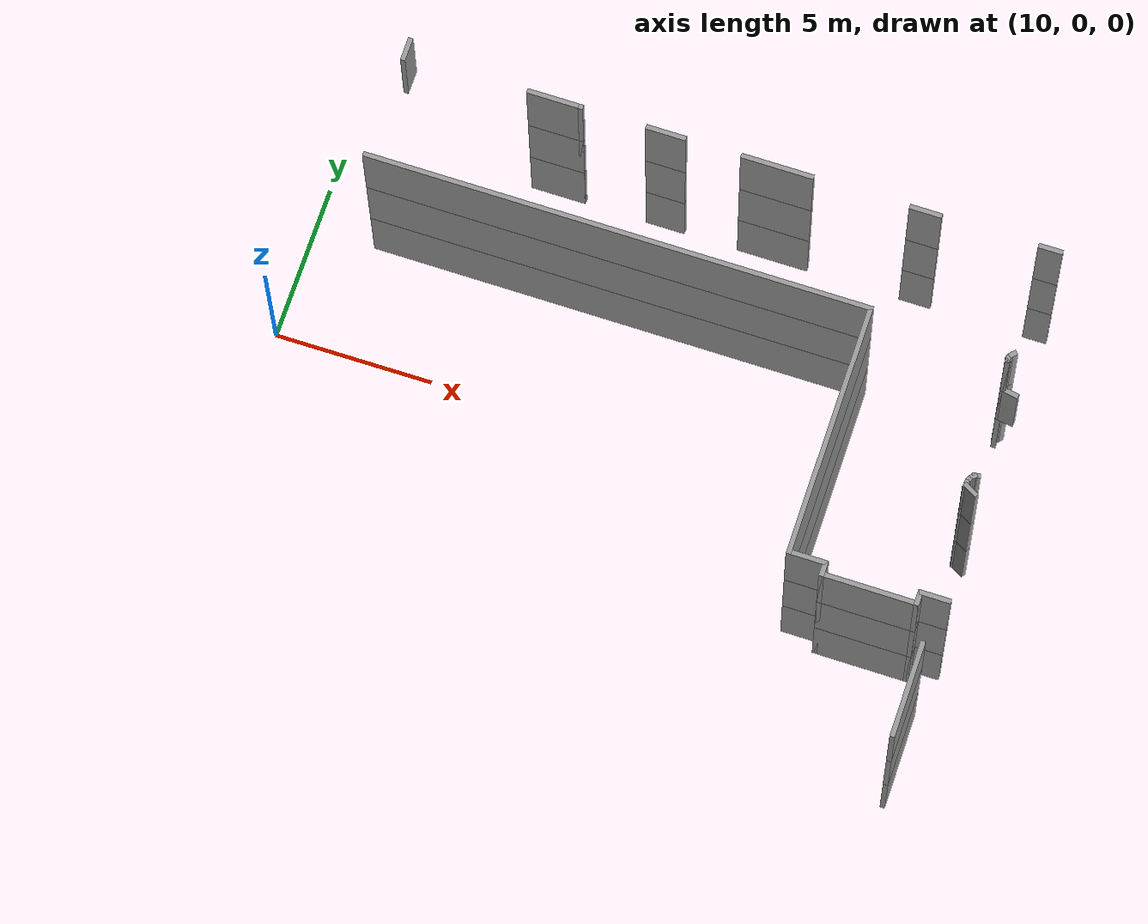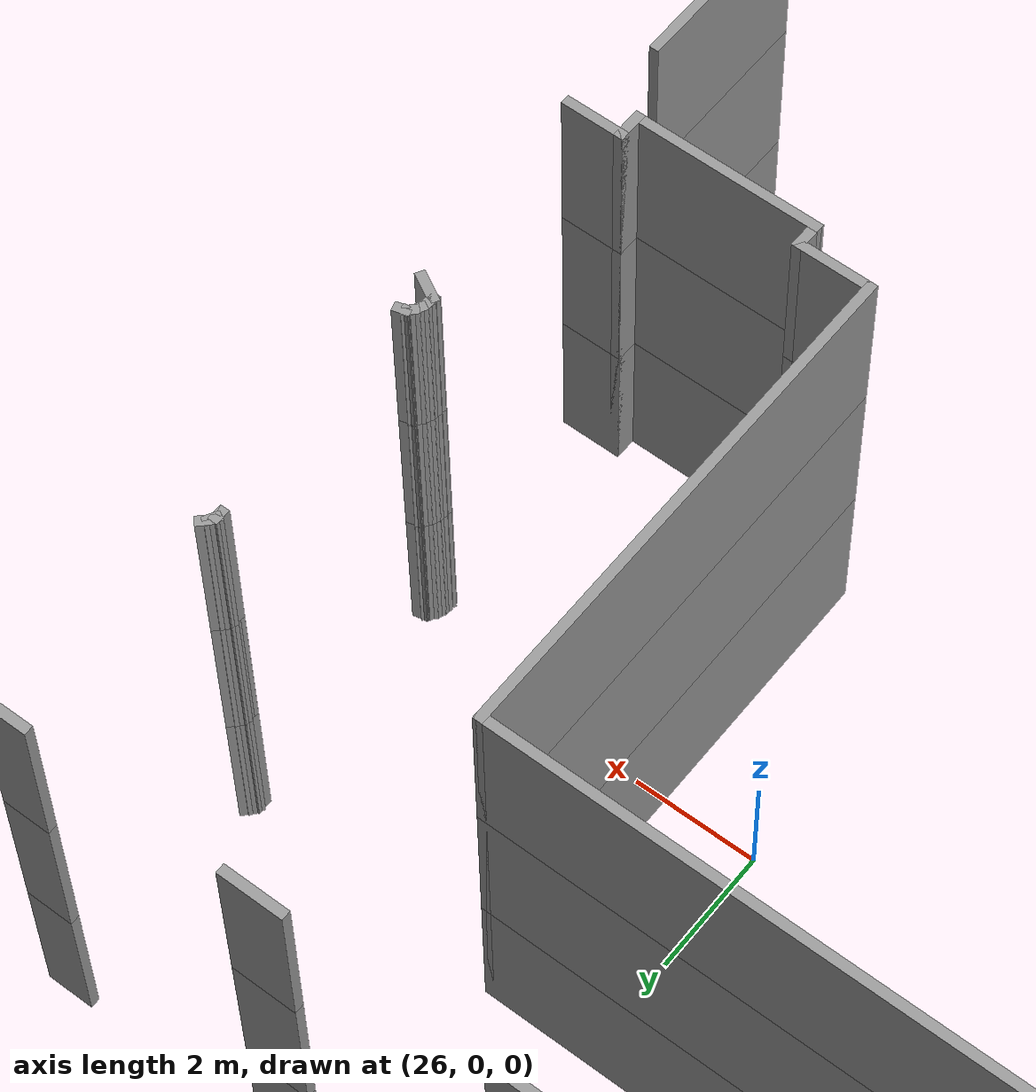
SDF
<sdf version="1.7">
 <model name="mapagazebo">
  <pose>-4.67869 9.01252 0 0 -0 0</pose>
  <link name="Wall_1156">
   <collision name="Wall_1156_Collision">
    <geometry><box><size>15.75 0.15 2.5</size></box></geometry>
    <pose>0 0 1.25 0 -0 0</pose>
   </collision>
   <visual name="Wall_1156_Visual">
    <pose>0 0 1.25 0 -0 0</pose>
    <geometry><box><size>15.75 0.15 2.5</size></box></geometry>
    <material>
     <script><uri>file://media/materials/scripts/gazebo.material</uri><name>Gazebo/Grey</name></script>
     <ambient>1 1 1 1</ambient>
    </material>
    <meta><layer>1</layer></meta>
   </visual>
   <pose>24.4654 -5.30647 2.5 0 -0 0</pose>
  </link>
  <link name="Wall_1158">
   <collision name="Wall_1158_Collision">
    <geometry><box><size>1.75 0.15 2.5</size></box></geometry>
    <pose>0 0 1.25 0 -0 0</pose>
   </collision>
   <visual name="Wall_1158_Visual">
    <pose>0 0 1.25 0 -0 0</pose>
    <geometry><box><size>1.75 0.15 2.5</size></box></geometry>
    <material>
     <script><uri>file://media/materials/scripts/gazebo.material</uri><name>Gazebo/Grey</name></script>
     <ambient>1 1 1 1</ambient>
    </material>
    <meta><layer>1</layer></meta>
   </visual>
   <pose>21.4212 -1.8985 2.5 0 -0 0</pose>
  </link>
  <link name="Wall_1159">
   <collision name="Wall_1159_Collision">
    <geometry><box><size>0.15 0.15 2.5</size></box></geometry>
    <pose>0 0 1.25 0 -0 0</pose>
   </collision>
   <visual name="Wall_1159_Visual">
    <pose>0 0 1.25 0 -0 0</pose>
    <geometry><box><size>0.15 0.15 2.5</size></box></geometry>
    <material>
     <script><uri>file://media/materials/scripts/gazebo.material</uri><name>Gazebo/Grey</name></script>
     <ambient>1 1 1 1</ambient>
    </material>
    <meta><layer>1</layer></meta>
   </visual>
   <pose>22.2212 -1.8985 2.5 0 -0 0</pose>
  </link>
  <link name="Wall_1163">
   <collision name="Wall_1163_Collision">
    <geometry><box><size>1.25 0.15 2.5</size></box></geometry>
    <pose>0 0 1.25 0 -0 0</pose>
   </collision>
   <visual name="Wall_1163_Visual">
    <pose>0 0 1.25 0 -0 0</pose>
    <geometry><box><size>1.25 0.15 2.5</size></box></geometry>
    <material>
     <script><uri>file://media/materials/scripts/gazebo.material</uri><name>Gazebo/Grey</name></script>
     <ambient>1 1 1 1</ambient>
    </material>
    <meta><layer>1</layer></meta>
   </visual>
   <pose>24.8712 -1.8985 2.5 0 -0 0</pose>
  </link>
  <link name="Wall_1167">
   <collision name="Wall_1167_Collision">
    <geometry><box><size>2.25 0.15 2.5</size></box></geometry>
    <pose>0 0 1.25 0 -0 0</pose>
   </collision>
   <visual name="Wall_1167_Visual">
    <pose>0 0 1.25 0 -0 0</pose>
    <geometry><box><size>2.25 0.15 2.5</size></box></geometry>
    <material>
     <script><uri>file://media/materials/scripts/gazebo.material</uri><name>Gazebo/Grey</name></script>
     <ambient>1 1 1 1</ambient>
    </material>
    <meta><layer>1</layer></meta>
   </visual>
   <pose>28.3212 -1.8985 2.5 0 -0 0</pose>
  </link>
  <link name="Wall_1171">
   <collision name="Wall_1171_Collision">
    <geometry><box><size>1 0.15 2.5</size></box></geometry>
    <pose>0 0 1.25 0 -0 0</pose>
   </collision>
   <visual name="Wall_1171_Visual">
    <pose>0 0 1.25 0 -0 0</pose>
    <geometry><box><size>1 0.15 2.5</size></box></geometry>
    <material>
     <script><uri>file://media/materials/scripts/gazebo.material</uri><name>Gazebo/Grey</name></script>
     <ambient>1 1 1 1</ambient>
    </material>
    <meta><layer>1</layer></meta>
   </visual>
   <pose>32.8962 -1.8985 2.5 0 -0 0</pose>
  </link>
  <link name="Wall_1175">
   <collision name="Wall_1175_Collision">
    <geometry><box><size>0.75 0.15 2.5</size></box></geometry>
    <pose>0 0 1.25 0 -0 0</pose>
   </collision>
   <visual name="Wall_1175_Visual">
    <pose>0 0 1.25 0 -0 0</pose>
    <geometry><box><size>0.75 0.15 2.5</size></box></geometry>
    <material>
     <script><uri>file://media/materials/scripts/gazebo.material</uri><name>Gazebo/Grey</name></script>
     <ambient>1 1 1 1</ambient>
    </material>
    <meta><layer>1</layer></meta>
   </visual>
   <pose>36.7212 -1.8985 2.5 0 -0 0</pose>
  </link>
  <link name="Wall_1209">
   <collision name="Wall_1209_Collision">
    <geometry><box><size>8 0.15 2.5</size></box></geometry>
    <pose>0 0 1.25 0 -0 0</pose>
   </collision>
   <visual name="Wall_1209_Visual">
    <pose>0 0 1.25 0 -0 0</pose>
    <geometry><box><size>8 0.15 2.5</size></box></geometry>
    <material>
     <script><uri>file://media/materials/scripts/gazebo.material</uri><name>Gazebo/Grey</name></script>
     <ambient>1 1 1 1</ambient>
    </material>
    <meta><layer>1</layer></meta>
   </visual>
   <pose>32.2654 -9.23147 2.5 0 -0 -1.5708</pose>
  </link>
  <link name="Wall_1210">
   <collision name="Wall_1210_Collision">
    <geometry><box><size>1.25 0.15 2.5</size></box></geometry>
    <pose>0 0 1.25 0 -0 0</pose>
   </collision>
   <visual name="Wall_1210_Visual">
    <pose>0 0 1.25 0 -0 0</pose>
    <geometry><box><size>1.25 0.15 2.5</size></box></geometry>
    <material>
     <script><uri>file://media/materials/scripts/gazebo.material</uri><name>Gazebo/Grey</name></script>
     <ambient>1 1 1 1</ambient>
    </material>
    <meta><layer>1</layer></meta>
   </visual>
   <pose>32.8154 -13.1565 2.5 0 -0 0</pose>
  </link>
  <link name="Wall_1211">
   <collision name="Wall_1211_Collision">
    <geometry><box><size>0.5 0.15 2.5</size></box></geometry>
    <pose>0 0 1.25 0 -0 0</pose>
   </collision>
   <visual name="Wall_1211_Visual">
    <pose>0 0 1.25 0 -0 0</pose>
    <geometry><box><size>0.5 0.15 2.5</size></box></geometry>
    <material>
     <script><uri>file://media/materials/scripts/gazebo.material</uri><name>Gazebo/Grey</name></script>
     <ambient>1 1 1 1</ambient>
    </material>
    <meta><layer>1</layer></meta>
   </visual>
   <pose>33.3654 -13.3315 2.5 0 -0 -1.5708</pose>
  </link>
  <link name="Wall_1212">
   <collision name="Wall_1212_Collision">
    <geometry><box><size>3 0.15 2.5</size></box></geometry>
    <pose>0 0 1.25 0 -0 0</pose>
   </collision>
   <visual name="Wall_1212_Visual">
    <pose>0 0 1.25 0 -0 0</pose>
    <geometry><box><size>3 0.15 2.5</size></box></geometry>
    <material>
     <script><uri>file://media/materials/scripts/gazebo.material</uri><name>Gazebo/Grey</name></script>
     <ambient>1 1 1 1</ambient>
    </material>
    <meta><layer>1</layer></meta>
   </visual>
   <pose>34.7904 -13.5065 2.5 0 -0 0</pose>
  </link>
  <link name="Wall_1213">
   <collision name="Wall_1213_Collision">
    <geometry><box><size>0.5 0.15 2.5</size></box></geometry>
    <pose>0 0 1.25 0 -0 0</pose>
   </collision>
   <visual name="Wall_1213_Visual">
    <pose>0 0 1.25 0 -0 0</pose>
    <geometry><box><size>0.5 0.15 2.5</size></box></geometry>
    <material>
     <script><uri>file://media/materials/scripts/gazebo.material</uri><name>Gazebo/Grey</name></script>
     <ambient>1 1 1 1</ambient>
    </material>
    <meta><layer>1</layer></meta>
   </visual>
   <pose>36.2154 -13.3315 2.5 0 -0 1.5708</pose>
  </link>
  <link name="Wall_1214">
   <collision name="Wall_1214_Collision">
    <geometry><box><size>1 0.15 2.5</size></box></geometry>
    <pose>0 0 1.25 0 -0 0</pose>
   </collision>
   <visual name="Wall_1214_Visual">
    <pose>0 0 1.25 0 -0 0</pose>
    <geometry><box><size>1 0.15 2.5</size></box></geometry>
    <material>
     <script><uri>file://media/materials/scripts/gazebo.material</uri><name>Gazebo/Grey</name></script>
     <ambient>1 1 1 1</ambient>
    </material>
    <meta><layer>1</layer></meta>
   </visual>
   <pose>36.6404 -13.1565 2.5 0 -0 0</pose>
  </link>
  <link name="Wall_1217">
   <collision name="Wall_1217_Collision">
    <geometry><box><size>3 0.15 2.5</size></box></geometry>
    <pose>0 0 1.25 0 -0 0</pose>
   </collision>
   <visual name="Wall_1217_Visual">
    <pose>0 0 1.25 0 -0 0</pose>
    <geometry><box><size>3 0.15 2.5</size></box></geometry>
    <material>
     <script><uri>file://media/materials/scripts/gazebo.material</uri><name>Gazebo/Grey</name></script>
     <ambient>1 1 1 1</ambient>
    </material>
    <meta><layer>1</layer></meta>
   </visual>
   <pose>36.7273 -16.0221 2.5 0 -0 -1.5708</pose>
  </link>
  <link name="Wall_1345">
   <collision name="Wall_1345_Collision">
    <geometry><box><size>0.25 0.15 2.5</size></box></geometry>
    <pose>0 0 1.25 0 -0 0</pose>
   </collision>
   <visual name="Wall_1345_Visual">
    <pose>0 0 1.25 0 -0 0</pose>
    <geometry><box><size>0.25 0.15 2.5</size></box></geometry>
    <material>
     <script><uri>file://media/materials/scripts/gazebo.material</uri><name>Gazebo/Grey</name></script>
     <ambient>1 1 1 1</ambient>
    </material>
    <meta><layer>1</layer></meta>
   </visual>
   <pose>36.5394 -5.55227 2.5 0 -0 1.5708</pose>
  </link>
  <link name="Wall_1346">
   <collision name="Wall_1346_Collision">
    <geometry><box><size>0.25 0.15 2.5</size></box></geometry>
    <pose>0 0 1.25 0 -0 0</pose>
   </collision>
   <visual name="Wall_1346_Visual">
    <pose>0 0 1.25 0 -0 0</pose>
    <geometry><box><size>0.25 0.15 2.5</size></box></geometry>
    <material>
     <script><uri>file://media/materials/scripts/gazebo.material</uri><name>Gazebo/Grey</name></script>
     <ambient>1 1 1 1</ambient>
    </material>
    <meta><layer>1</layer></meta>
   </visual>
   <pose>36.5644 -5.45897 2.5 0 -0 1.0472</pose>
  </link>
  <link name="Wall_1347">
   <collision name="Wall_1347_Collision">
    <geometry><box><size>0.25 0.15 2.5</size></box></geometry>
    <pose>0 0 1.25 0 -0 0</pose>
   </collision>
   <visual name="Wall_1347_Visual">
    <pose>0 0 1.25 0 -0 0</pose>
    <geometry><box><size>0.25 0.15 2.5</size></box></geometry>
    <material>
     <script><uri>file://media/materials/scripts/gazebo.material</uri><name>Gazebo/Grey</name></script>
     <ambient>1 1 1 1</ambient>
    </material>
    <meta><layer>1</layer></meta>
   </visual>
   <pose>36.6247 -5.38032 2.5 0 -0 0.785398</pose>
  </link>
  <link name="Wall_1357">
   <collision name="Wall_1357_Collision">
    <geometry><box><size>0.579191 0.15 2.5</size></box></geometry>
    <pose>0 0 1.25 0 -0 0</pose>
   </collision>
   <visual name="Wall_1357_Visual">
    <pose>0 0 1.25 0 -0 0</pose>
    <geometry><box><size>0.579191 0.15 2.5</size></box></geometry>
    <material>
     <script><uri>file://media/materials/scripts/gazebo.material</uri><name>Gazebo/Grey</name></script>
     <ambient>1 1 1 1</ambient>
    </material>
    <meta><layer>1</layer></meta>
   </visual>
   <pose>36.7513 -5.63612 2.5 0 -0 2.98322</pose>
  </link>
  <link name="Wall_1358">
   <collision name="Wall_1358_Collision">
    <geometry><box><size>0.15 0.15 2.5</size></box></geometry>
    <pose>0 0 1.25 0 -0 0</pose>
   </collision>
   <visual name="Wall_1358_Visual">
    <pose>0 0 1.25 0 -0 0</pose>
    <geometry><box><size>0.15 0.15 2.5</size></box></geometry>
    <material>
     <script><uri>file://media/materials/scripts/gazebo.material</uri><name>Gazebo/Grey</name></script>
     <ambient>1 1 1 1</ambient>
    </material>
    <meta><layer>1</layer></meta>
   </visual>
   <pose>36.5394 -5.60227 2.5 0 -0 0</pose>
  </link>
  <link name="Wall_1359">
   <collision name="Wall_1359_Collision">
    <geometry><box><size>0.25 0.15 2.5</size></box></geometry>
    <pose>0 0 1.25 0 -0 0</pose>
   </collision>
   <visual name="Wall_1359_Visual">
    <pose>0 0 1.25 0 -0 0</pose>
    <geometry><box><size>0.25 0.15 2.5</size></box></geometry>
    <material>
     <script><uri>file://media/materials/scripts/gazebo.material</uri><name>Gazebo/Grey</name></script>
     <ambient>1 1 1 1</ambient>
    </material>
    <meta><layer>1</layer></meta>
   </visual>
   <pose>36.5105 -9.60144 2.5 0 -0 1.5708</pose>
  </link>
  <link name="Wall_1360">
   <collision name="Wall_1360_Collision">
    <geometry><box><size>0.25 0.15 2.5</size></box></geometry>
    <pose>0 0 1.25 0 -0 0</pose>
   </collision>
   <visual name="Wall_1360_Visual">
    <pose>0 0 1.25 0 -0 0</pose>
    <geometry><box><size>0.25 0.15 2.5</size></box></geometry>
    <material>
     <script><uri>file://media/materials/scripts/gazebo.material</uri><name>Gazebo/Grey</name></script>
     <ambient>1 1 1 1</ambient>
    </material>
    <meta><layer>1</layer></meta>
   </visual>
   <pose>36.5235 -9.50314 2.5 0 -0 1.309</pose>
  </link>
  <link name="Wall_1361">
   <collision name="Wall_1361_Collision">
    <geometry><box><size>0.25 0.15 2.5</size></box></geometry>
    <pose>0 0 1.25 0 -0 0</pose>
   </collision>
   <visual name="Wall_1361_Visual">
    <pose>0 0 1.25 0 -0 0</pose>
    <geometry><box><size>0.25 0.15 2.5</size></box></geometry>
    <material>
     <script><uri>file://media/materials/scripts/gazebo.material</uri><name>Gazebo/Grey</name></script>
     <ambient>1 1 1 1</ambient>
    </material>
    <meta><layer>1</layer></meta>
   </visual>
   <pose>36.5614 -9.41155 2.5 0 -0 1.0472</pose>
  </link>
  <link name="Wall_1362">
   <collision name="Wall_1362_Collision">
    <geometry><box><size>0.25 0.15 2.5</size></box></geometry>
    <pose>0 0 1.25 0 -0 0</pose>
   </collision>
   <visual name="Wall_1362_Visual">
    <pose>0 0 1.25 0 -0 0</pose>
    <geometry><box><size>0.25 0.15 2.5</size></box></geometry>
    <material>
     <script><uri>file://media/materials/scripts/gazebo.material</uri><name>Gazebo/Grey</name></script>
     <ambient>1 1 1 1</ambient>
    </material>
    <meta><layer>1</layer></meta>
   </visual>
   <pose>36.6218 -9.33289 2.5 0 -0 0.785398</pose>
  </link>
  <link name="Wall_1363">
   <collision name="Wall_1363_Collision">
    <geometry><box><size>0.15 0.15 2.5</size></box></geometry>
    <pose>0 0 1.25 0 -0 0</pose>
   </collision>
   <visual name="Wall_1363_Visual">
    <pose>0 0 1.25 0 -0 0</pose>
    <geometry><box><size>0.15 0.15 2.5</size></box></geometry>
    <material>
     <script><uri>file://media/materials/scripts/gazebo.material</uri><name>Gazebo/Grey</name></script>
     <ambient>1 1 1 1</ambient>
    </material>
    <meta><layer>1</layer></meta>
   </visual>
   <pose>36.6571 -9.29753 2.5 0 -0 0</pose>
  </link>
  <link name="Wall_1364">
   <collision name="Wall_1364_Collision">
    <geometry><box><size>0.25 0.15 2.5</size></box></geometry>
    <pose>0 0 1.25 0 -0 0</pose>
   </collision>
   <visual name="Wall_1364_Visual">
    <pose>0 0 1.25 0 -0 0</pose>
    <geometry><box><size>0.25 0.15 2.5</size></box></geometry>
    <material>
     <script><uri>file://media/materials/scripts/gazebo.material</uri><name>Gazebo/Grey</name></script>
     <ambient>1 1 1 1</ambient>
    </material>
    <meta><layer>1</layer></meta>
   </visual>
   <pose>36.7054 -9.28459 2.5 0 -0 0.261799</pose>
  </link>
  <link name="Wall_1374">
   <collision name="Wall_1374_Collision">
    <geometry><box><size>0.514686 0.15 2.5</size></box></geometry>
    <pose>0 0 1.25 0 -0 0</pose>
   </collision>
   <visual name="Wall_1374_Visual">
    <pose>0 0 1.25 0 -0 0</pose>
    <geometry><box><size>0.514686 0.15 2.5</size></box></geometry>
    <material>
     <script><uri>file://media/materials/scripts/gazebo.material</uri><name>Gazebo/Grey</name></script>
     <ambient>1 1 1 1</ambient>
    </material>
    <meta><layer>1</layer></meta>
   </visual>
   <pose>36.6701 -9.73974 2.5 0 -0 2.63605</pose>
  </link>
  <link name="Wall_1375">
   <collision name="Wall_1375_Collision">
    <geometry><box><size>0.15 0.15 2.5</size></box></geometry>
    <pose>0 0 1.25 0 -0 0</pose>
   </collision>
   <visual name="Wall_1375_Visual">
    <pose>0 0 1.25 0 -0 0</pose>
    <geometry><box><size>0.15 0.15 2.5</size></box></geometry>
    <material>
     <script><uri>file://media/materials/scripts/gazebo.material</uri><name>Gazebo/Grey</name></script>
     <ambient>1 1 1 1</ambient>
    </material>
    <meta><layer>1</layer></meta>
   </visual>
   <pose>36.5105 -9.65144 2.5 0 -0 0</pose>
  </link>
  <link name="Wall_1376">
   <collision name="Wall_1376_Collision">
    <geometry><box><size>0.15 0.15 2.5</size></box></geometry>
    <pose>0 0 1.25 0 -0 0</pose>
   </collision>
   <visual name="Wall_1376_Visual">
    <pose>0 0 1.25 0 -0 0</pose>
    <geometry><box><size>0.15 0.15 2.5</size></box></geometry>
    <material>
     <script><uri>file://media/materials/scripts/gazebo.material</uri><name>Gazebo/Grey</name></script>
     <ambient>1 1 1 1</ambient>
    </material>
    <meta><layer>1</layer></meta>
   </visual>
   <pose>36.5105 -9.65144 2.5 0 -0 0</pose>
  </link>
  <link name="Wall_1761">
   <collision name="Wall_1761_Collision">
    <geometry><box><size>0.75 0.15 2.5</size></box></geometry>
    <pose>0 0 1.25 0 -0 0</pose>
   </collision>
   <visual name="Wall_1761_Visual">
    <pose>0 0 1.25 0 -0 0</pose>
    <geometry><box><size>0.75 0.15 2.5</size></box></geometry>
    <material>
     <script><uri>file://media/materials/scripts/gazebo.material</uri><name>Gazebo/Grey</name></script>
     <ambient>1 1 1 1</ambient>
    </material>
    <meta><layer>2</layer></meta>
   </visual>
   <pose>16.7273 -1.74706 5 0 -0 1.5708</pose>
  </link>
  <link name="Wall_1780">
   <collision name="Wall_1780_Collision">
    <geometry><box><size>15.75 0.15 2.5</size></box></geometry>
    <pose>0 0 1.25 0 -0 0</pose>
   </collision>
   <visual name="Wall_1780_Visual">
    <pose>0 0 1.25 0 -0 0</pose>
    <geometry><box><size>15.75 0.15 2.5</size></box></geometry>
    <material>
     <script><uri>file://media/materials/scripts/gazebo.material</uri><name>Gazebo/Grey</name></script>
     <ambient>1 1 1 1</ambient>
    </material>
    <meta><layer>2</layer></meta>
   </visual>
   <pose>24.4654 -5.30647 5 0 -0 0</pose>
  </link>
  <link name="Wall_1782">
   <collision name="Wall_1782_Collision">
    <geometry><box><size>1.75 0.15 2.5</size></box></geometry>
    <pose>0 0 1.25 0 -0 0</pose>
   </collision>
   <visual name="Wall_1782_Visual">
    <pose>0 0 1.25 0 -0 0</pose>
    <geometry><box><size>1.75 0.15 2.5</size></box></geometry>
    <material>
     <script><uri>file://media/materials/scripts/gazebo.material</uri><name>Gazebo/Grey</name></script>
     <ambient>1 1 1 1</ambient>
    </material>
    <meta><layer>2</layer></meta>
   </visual>
   <pose>21.4212 -1.8985 5 0 -0 0</pose>
  </link>
  <link name="Wall_1783">
   <collision name="Wall_1783_Collision">
    <geometry><box><size>0.15 0.15 2.5</size></box></geometry>
    <pose>0 0 1.25 0 -0 0</pose>
   </collision>
   <visual name="Wall_1783_Visual">
    <pose>0 0 1.25 0 -0 0</pose>
    <geometry><box><size>0.15 0.15 2.5</size></box></geometry>
    <material>
     <script><uri>file://media/materials/scripts/gazebo.material</uri><name>Gazebo/Grey</name></script>
     <ambient>1 1 1 1</ambient>
    </material>
    <meta><layer>2</layer></meta>
   </visual>
   <pose>22.2212 -1.8985 5 0 -0 0</pose>
  </link>
  <link name="Wall_1787">
   <collision name="Wall_1787_Collision">
    <geometry><box><size>1.25 0.15 2.5</size></box></geometry>
    <pose>0 0 1.25 0 -0 0</pose>
   </collision>
   <visual name="Wall_1787_Visual">
    <pose>0 0 1.25 0 -0 0</pose>
    <geometry><box><size>1.25 0.15 2.5</size></box></geometry>
    <material>
     <script><uri>file://media/materials/scripts/gazebo.material</uri><name>Gazebo/Grey</name></script>
     <ambient>1 1 1 1</ambient>
    </material>
    <meta><layer>2</layer></meta>
   </visual>
   <pose>24.8712 -1.8985 5 0 -0 0</pose>
  </link>
  <link name="Wall_1791">
   <collision name="Wall_1791_Collision">
    <geometry><box><size>2.25 0.15 2.5</size></box></geometry>
    <pose>0 0 1.25 0 -0 0</pose>
   </collision>
   <visual name="Wall_1791_Visual">
    <pose>0 0 1.25 0 -0 0</pose>
    <geometry><box><size>2.25 0.15 2.5</size></box></geometry>
    <material>
     <script><uri>file://media/materials/scripts/gazebo.material</uri><name>Gazebo/Grey</name></script>
     <ambient>1 1 1 1</ambient>
    </material>
    <meta><layer>2</layer></meta>
   </visual>
   <pose>28.3212 -1.8985 5 0 -0 0</pose>
  </link>
  <link name="Wall_1795">
   <collision name="Wall_1795_Collision">
    <geometry><box><size>1 0.15 2.5</size></box></geometry>
    <pose>0 0 1.25 0 -0 0</pose>
   </collision>
   <visual name="Wall_1795_Visual">
    <pose>0 0 1.25 0 -0 0</pose>
    <geometry><box><size>1 0.15 2.5</size></box></geometry>
    <material>
     <script><uri>file://media/materials/scripts/gazebo.material</uri><name>Gazebo/Grey</name></script>
     <ambient>1 1 1 1</ambient>
    </material>
    <meta><layer>2</layer></meta>
   </visual>
   <pose>32.8962 -1.8985 5 0 -0 0</pose>
  </link>
  <link name="Wall_1799">
   <collision name="Wall_1799_Collision">
    <geometry><box><size>0.75 0.15 2.5</size></box></geometry>
    <pose>0 0 1.25 0 -0 0</pose>
   </collision>
   <visual name="Wall_1799_Visual">
    <pose>0 0 1.25 0 -0 0</pose>
    <geometry><box><size>0.75 0.15 2.5</size></box></geometry>
    <material>
     <script><uri>file://media/materials/scripts/gazebo.material</uri><name>Gazebo/Grey</name></script>
     <ambient>1 1 1 1</ambient>
    </material>
    <meta><layer>2</layer></meta>
   </visual>
   <pose>36.7212 -1.8985 5 0 -0 0</pose>
  </link>
  <link name="Wall_1833">
   <collision name="Wall_1833_Collision">
    <geometry><box><size>8 0.15 2.5</size></box></geometry>
    <pose>0 0 1.25 0 -0 0</pose>
   </collision>
   <visual name="Wall_1833_Visual">
    <pose>0 0 1.25 0 -0 0</pose>
    <geometry><box><size>8 0.15 2.5</size></box></geometry>
    <material>
     <script><uri>file://media/materials/scripts/gazebo.material</uri><name>Gazebo/Grey</name></script>
     <ambient>1 1 1 1</ambient>
    </material>
    <meta><layer>2</layer></meta>
   </visual>
   <pose>32.2654 -9.23147 5 0 -0 -1.5708</pose>
  </link>
  <link name="Wall_1834">
   <collision name="Wall_1834_Collision">
    <geometry><box><size>1.25 0.15 2.5</size></box></geometry>
    <pose>0 0 1.25 0 -0 0</pose>
   </collision>
   <visual name="Wall_1834_Visual">
    <pose>0 0 1.25 0 -0 0</pose>
    <geometry><box><size>1.25 0.15 2.5</size></box></geometry>
    <material>
     <script><uri>file://media/materials/scripts/gazebo.material</uri><name>Gazebo/Grey</name></script>
     <ambient>1 1 1 1</ambient>
    </material>
    <meta><layer>2</layer></meta>
   </visual>
   <pose>32.8154 -13.1565 5 0 -0 0</pose>
  </link>
  <link name="Wall_1835">
   <collision name="Wall_1835_Collision">
    <geometry><box><size>0.5 0.15 2.5</size></box></geometry>
    <pose>0 0 1.25 0 -0 0</pose>
   </collision>
   <visual name="Wall_1835_Visual">
    <pose>0 0 1.25 0 -0 0</pose>
    <geometry><box><size>0.5 0.15 2.5</size></box></geometry>
    <material>
     <script><uri>file://media/materials/scripts/gazebo.material</uri><name>Gazebo/Grey</name></script>
     <ambient>1 1 1 1</ambient>
    </material>
    <meta><layer>2</layer></meta>
   </visual>
   <pose>33.3654 -13.3315 5 0 -0 -1.5708</pose>
  </link>
  <link name="Wall_1836">
   <collision name="Wall_1836_Collision">
    <geometry><box><size>3 0.15 2.5</size></box></geometry>
    <pose>0 0 1.25 0 -0 0</pose>
   </collision>
   <visual name="Wall_1836_Visual">
    <pose>0 0 1.25 0 -0 0</pose>
    <geometry><box><size>3 0.15 2.5</size></box></geometry>
    <material>
     <script><uri>file://media/materials/scripts/gazebo.material</uri><name>Gazebo/Grey</name></script>
     <ambient>1 1 1 1</ambient>
    </material>
    <meta><layer>2</layer></meta>
   </visual>
   <pose>34.7904 -13.5065 5 0 -0 0</pose>
  </link>
  <link name="Wall_1837">
   <collision name="Wall_1837_Collision">
    <geometry><box><size>0.5 0.15 2.5</size></box></geometry>
    <pose>0 0 1.25 0 -0 0</pose>
   </collision>
   <visual name="Wall_1837_Visual">
    <pose>0 0 1.25 0 -0 0</pose>
    <geometry><box><size>0.5 0.15 2.5</size></box></geometry>
    <material>
     <script><uri>file://media/materials/scripts/gazebo.material</uri><name>Gazebo/Grey</name></script>
     <ambient>1 1 1 1</ambient>
    </material>
    <meta><layer>2</layer></meta>
   </visual>
   <pose>36.2154 -13.3315 5 0 -0 1.5708</pose>
  </link>
  <link name="Wall_1838">
   <collision name="Wall_1838_Collision">
    <geometry><box><size>1 0.15 2.5</size></box></geometry>
    <pose>0 0 1.25 0 -0 0</pose>
   </collision>
   <visual name="Wall_1838_Visual">
    <pose>0 0 1.25 0 -0 0</pose>
    <geometry><box><size>1 0.15 2.5</size></box></geometry>
    <material>
     <script><uri>file://media/materials/scripts/gazebo.material</uri><name>Gazebo/Grey</name></script>
     <ambient>1 1 1 1</ambient>
    </material>
    <meta><layer>2</layer></meta>
   </visual>
   <pose>36.6404 -13.1565 5 0 -0 0</pose>
  </link>
  <link name="Wall_1841">
   <collision name="Wall_1841_Collision">
    <geometry><box><size>3 0.15 2.5</size></box></geometry>
    <pose>0 0 1.25 0 -0 0</pose>
   </collision>
   <visual name="Wall_1841_Visual">
    <pose>0 0 1.25 0 -0 0</pose>
    <geometry><box><size>3 0.15 2.5</size></box></geometry>
    <material>
     <script><uri>file://media/materials/scripts/gazebo.material</uri><name>Gazebo/Grey</name></script>
     <ambient>1 1 1 1</ambient>
    </material>
    <meta><layer>2</layer></meta>
   </visual>
   <pose>36.7273 -16.0221 5 0 -0 -1.5708</pose>
  </link>
  <link name="Wall_1969">
   <collision name="Wall_1969_Collision">
    <geometry><box><size>0.25 0.15 2.5</size></box></geometry>
    <pose>0 0 1.25 0 -0 0</pose>
   </collision>
   <visual name="Wall_1969_Visual">
    <pose>0 0 1.25 0 -0 0</pose>
    <geometry><box><size>0.25 0.15 2.5</size></box></geometry>
    <material>
     <script><uri>file://media/materials/scripts/gazebo.material</uri><name>Gazebo/Grey</name></script>
     <ambient>1 1 1 1</ambient>
    </material>
    <meta><layer>2</layer></meta>
   </visual>
   <pose>36.5394 -5.55227 5 0 -0 1.5708</pose>
  </link>
  <link name="Wall_1970">
   <collision name="Wall_1970_Collision">
    <geometry><box><size>0.25 0.15 2.5</size></box></geometry>
    <pose>0 0 1.25 0 -0 0</pose>
   </collision>
   <visual name="Wall_1970_Visual">
    <pose>0 0 1.25 0 -0 0</pose>
    <geometry><box><size>0.25 0.15 2.5</size></box></geometry>
    <material>
     <script><uri>file://media/materials/scripts/gazebo.material</uri><name>Gazebo/Grey</name></script>
     <ambient>1 1 1 1</ambient>
    </material>
    <meta><layer>2</layer></meta>
   </visual>
   <pose>36.5644 -5.45897 5 0 -0 1.0472</pose>
  </link>
  <link name="Wall_1971">
   <collision name="Wall_1971_Collision">
    <geometry><box><size>0.25 0.15 2.5</size></box></geometry>
    <pose>0 0 1.25 0 -0 0</pose>
   </collision>
   <visual name="Wall_1971_Visual">
    <pose>0 0 1.25 0 -0 0</pose>
    <geometry><box><size>0.25 0.15 2.5</size></box></geometry>
    <material>
     <script><uri>file://media/materials/scripts/gazebo.material</uri><name>Gazebo/Grey</name></script>
     <ambient>1 1 1 1</ambient>
    </material>
    <meta><layer>2</layer></meta>
   </visual>
   <pose>36.6247 -5.38032 5 0 -0 0.785398</pose>
  </link>
  <link name="Wall_1982">
   <collision name="Wall_1982_Collision">
    <geometry><box><size>0.15 0.15 2.5</size></box></geometry>
    <pose>0 0 1.25 0 -0 0</pose>
   </collision>
   <visual name="Wall_1982_Visual">
    <pose>0 0 1.25 0 -0 0</pose>
    <geometry><box><size>0.15 0.15 2.5</size></box></geometry>
    <material>
     <script><uri>file://media/materials/scripts/gazebo.material</uri><name>Gazebo/Grey</name></script>
     <ambient>1 1 1 1</ambient>
    </material>
    <meta><layer>2</layer></meta>
   </visual>
   <pose>36.5394 -5.60227 5 0 -0 0</pose>
  </link>
  <link name="Wall_1983">
   <collision name="Wall_1983_Collision">
    <geometry><box><size>0.25 0.15 2.5</size></box></geometry>
    <pose>0 0 1.25 0 -0 0</pose>
   </collision>
   <visual name="Wall_1983_Visual">
    <pose>0 0 1.25 0 -0 0</pose>
    <geometry><box><size>0.25 0.15 2.5</size></box></geometry>
    <material>
     <script><uri>file://media/materials/scripts/gazebo.material</uri><name>Gazebo/Grey</name></script>
     <ambient>1 1 1 1</ambient>
    </material>
    <meta><layer>2</layer></meta>
   </visual>
   <pose>36.5105 -9.60144 5 0 -0 1.5708</pose>
  </link>
  <link name="Wall_1984">
   <collision name="Wall_1984_Collision">
    <geometry><box><size>0.25 0.15 2.5</size></box></geometry>
    <pose>0 0 1.25 0 -0 0</pose>
   </collision>
   <visual name="Wall_1984_Visual">
    <pose>0 0 1.25 0 -0 0</pose>
    <geometry><box><size>0.25 0.15 2.5</size></box></geometry>
    <material>
     <script><uri>file://media/materials/scripts/gazebo.material</uri><name>Gazebo/Grey</name></script>
     <ambient>1 1 1 1</ambient>
    </material>
    <meta><layer>2</layer></meta>
   </visual>
   <pose>36.5235 -9.50314 5 0 -0 1.309</pose>
  </link>
  <link name="Wall_1985">
   <collision name="Wall_1985_Collision">
    <geometry><box><size>0.25 0.15 2.5</size></box></geometry>
    <pose>0 0 1.25 0 -0 0</pose>
   </collision>
   <visual name="Wall_1985_Visual">
    <pose>0 0 1.25 0 -0 0</pose>
    <geometry><box><size>0.25 0.15 2.5</size></box></geometry>
    <material>
     <script><uri>file://media/materials/scripts/gazebo.material</uri><name>Gazebo/Grey</name></script>
     <ambient>1 1 1 1</ambient>
    </material>
    <meta><layer>2</layer></meta>
   </visual>
   <pose>36.5614 -9.41155 5 0 -0 1.0472</pose>
  </link>
  <link name="Wall_1986">
   <collision name="Wall_1986_Collision">
    <geometry><box><size>0.25 0.15 2.5</size></box></geometry>
    <pose>0 0 1.25 0 -0 0</pose>
   </collision>
   <visual name="Wall_1986_Visual">
    <pose>0 0 1.25 0 -0 0</pose>
    <geometry><box><size>0.25 0.15 2.5</size></box></geometry>
    <material>
     <script><uri>file://media/materials/scripts/gazebo.material</uri><name>Gazebo/Grey</name></script>
     <ambient>1 1 1 1</ambient>
    </material>
    <meta><layer>2</layer></meta>
   </visual>
   <pose>36.6218 -9.33289 5 0 -0 0.785398</pose>
  </link>
  <link name="Wall_1987">
   <collision name="Wall_1987_Collision">
    <geometry><box><size>0.15 0.15 2.5</size></box></geometry>
    <pose>0 0 1.25 0 -0 0</pose>
   </collision>
   <visual name="Wall_1987_Visual">
    <pose>0 0 1.25 0 -0 0</pose>
    <geometry><box><size>0.15 0.15 2.5</size></box></geometry>
    <material>
     <script><uri>file://media/materials/scripts/gazebo.material</uri><name>Gazebo/Grey</name></script>
     <ambient>1 1 1 1</ambient>
    </material>
    <meta><layer>2</layer></meta>
   </visual>
   <pose>36.6571 -9.29753 5 0 -0 0</pose>
  </link>
  <link name="Wall_1988">
   <collision name="Wall_1988_Collision">
    <geometry><box><size>0.25 0.15 2.5</size></box></geometry>
    <pose>0 0 1.25 0 -0 0</pose>
   </collision>
   <visual name="Wall_1988_Visual">
    <pose>0 0 1.25 0 -0 0</pose>
    <geometry><box><size>0.25 0.15 2.5</size></box></geometry>
    <material>
     <script><uri>file://media/materials/scripts/gazebo.material</uri><name>Gazebo/Grey</name></script>
     <ambient>1 1 1 1</ambient>
    </material>
    <meta><layer>2</layer></meta>
   </visual>
   <pose>36.7054 -9.28459 5 0 -0 0.261799</pose>
  </link>
  <link name="Wall_1998">
   <collision name="Wall_1998_Collision">
    <geometry><box><size>0.514686 0.15 2.5</size></box></geometry>
    <pose>0 0 1.25 0 -0 0</pose>
   </collision>
   <visual name="Wall_1998_Visual">
    <pose>0 0 1.25 0 -0 0</pose>
    <geometry><box><size>0.514686 0.15 2.5</size></box></geometry>
    <material>
     <script><uri>file://media/materials/scripts/gazebo.material</uri><name>Gazebo/Grey</name></script>
     <ambient>1 1 1 1</ambient>
    </material>
    <meta><layer>2</layer></meta>
   </visual>
   <pose>36.6701 -9.73974 5 0 -0 2.63605</pose>
  </link>
  <link name="Wall_1999">
   <collision name="Wall_1999_Collision">
    <geometry><box><size>0.15 0.15 2.5</size></box></geometry>
    <pose>0 0 1.25 0 -0 0</pose>
   </collision>
   <visual name="Wall_1999_Visual">
    <pose>0 0 1.25 0 -0 0</pose>
    <geometry><box><size>0.15 0.15 2.5</size></box></geometry>
    <material>
     <script><uri>file://media/materials/scripts/gazebo.material</uri><name>Gazebo/Grey</name></script>
     <ambient>1 1 1 1</ambient>
    </material>
    <meta><layer>2</layer></meta>
   </visual>
   <pose>36.5105 -9.65144 5 0 -0 0</pose>
  </link>
  <link name="Wall_2000">
   <collision name="Wall_2000_Collision">
    <geometry><box><size>0.15 0.15 2.5</size></box></geometry>
    <pose>0 0 1.25 0 -0 0</pose>
   </collision>
   <visual name="Wall_2000_Visual">
    <pose>0 0 1.25 0 -0 0</pose>
    <geometry><box><size>0.15 0.15 2.5</size></box></geometry>
    <material>
     <script><uri>file://media/materials/scripts/gazebo.material</uri><name>Gazebo/Grey</name></script>
     <ambient>1 1 1 1</ambient>
    </material>
    <meta><layer>2</layer></meta>
   </visual>
   <pose>36.5105 -9.65144 5 0 -0 0</pose>
  </link>
  <link name="Wall_470">
   <collision name="Wall_470_Collision">
    <geometry><box><size>15.75 0.15 2.5</size></box></geometry>
    <pose>0 0 1.25 0 -0 0</pose>
   </collision>
   <visual name="Wall_470_Visual">
    <pose>0 0 1.25 0 -0 0</pose>
    <geometry><box><size>15.75 0.15 2.5</size></box></geometry>
    <material>
     <script><uri>file://media/materials/scripts/gazebo.material</uri><name>Gazebo/Grey</name></script>
     <ambient>1 1 1 1</ambient>
    </material>
    <meta><layer>0</layer></meta>
   </visual>
   <pose>24.4654 -5.30647 0 0 -0 0</pose>
  </link>
  <link name="Wall_473">
   <collision name="Wall_473_Collision">
    <geometry><box><size>1.75 0.15 2.5</size></box></geometry>
    <pose>0 0 1.25 0 -0 0</pose>
   </collision>
   <visual name="Wall_473_Visual">
    <pose>0 0 1.25 0 -0 0</pose>
    <geometry><box><size>1.75 0.15 2.5</size></box></geometry>
    <material>
     <script><uri>file://media/materials/scripts/gazebo.material</uri><name>Gazebo/Grey</name></script>
     <ambient>1 1 1 1</ambient>
    </material>
    <meta><layer>0</layer></meta>
   </visual>
   <pose>21.4212 -1.8985 0 0 -0 0</pose>
  </link>
  <link name="Wall_474">
   <collision name="Wall_474_Collision">
    <geometry><box><size>0.15 0.15 2.5</size></box></geometry>
    <pose>0 0 1.25 0 -0 0</pose>
   </collision>
   <visual name="Wall_474_Visual">
    <pose>0 0 1.25 0 -0 0</pose>
    <geometry><box><size>0.15 0.15 2.5</size></box></geometry>
    <material>
     <script><uri>file://media/materials/scripts/gazebo.material</uri><name>Gazebo/Grey</name></script>
     <ambient>1 1 1 1</ambient>
    </material>
    <meta><layer>0</layer></meta>
   </visual>
   <pose>22.2212 -1.8985 0 0 -0 0</pose>
  </link>
  <link name="Wall_478">
   <collision name="Wall_478_Collision">
    <geometry><box><size>1.25 0.15 2.5</size></box></geometry>
    <pose>0 0 1.25 0 -0 0</pose>
   </collision>
   <visual name="Wall_478_Visual">
    <pose>0 0 1.25 0 -0 0</pose>
    <geometry><box><size>1.25 0.15 2.5</size></box></geometry>
    <material>
     <script><uri>file://media/materials/scripts/gazebo.material</uri><name>Gazebo/Grey</name></script>
     <ambient>1 1 1 1</ambient>
    </material>
    <meta><layer>0</layer></meta>
   </visual>
   <pose>24.8712 -1.8985 0 0 -0 0</pose>
  </link>
  <link name="Wall_484">
   <collision name="Wall_484_Collision">
    <geometry><box><size>2.25 0.15 2.5</size></box></geometry>
    <pose>0 0 1.25 0 -0 0</pose>
   </collision>
   <visual name="Wall_484_Visual">
    <pose>0 0 1.25 0 -0 0</pose>
    <geometry><box><size>2.25 0.15 2.5</size></box></geometry>
    <material>
     <script><uri>file://media/materials/scripts/gazebo.material</uri><name>Gazebo/Grey</name></script>
     <ambient>1 1 1 1</ambient>
    </material>
    <meta><layer>0</layer></meta>
   </visual>
   <pose>28.3212 -1.8985 0 0 -0 0</pose>
  </link>
  <link name="Wall_492">
   <collision name="Wall_492_Collision">
    <geometry><box><size>1 0.15 2.5</size></box></geometry>
    <pose>0 0 1.25 0 -0 0</pose>
   </collision>
   <visual name="Wall_492_Visual">
    <pose>0 0 1.25 0 -0 0</pose>
    <geometry><box><size>1 0.15 2.5</size></box></geometry>
    <material>
     <script><uri>file://media/materials/scripts/gazebo.material</uri><name>Gazebo/Grey</name></script>
     <ambient>1 1 1 1</ambient>
    </material>
    <meta><layer>0</layer></meta>
   </visual>
   <pose>32.8962 -1.8985 0 0 -0 0</pose>
  </link>
  <link name="Wall_496">
   <collision name="Wall_496_Collision">
    <geometry><box><size>0.75 0.15 2.5</size></box></geometry>
    <pose>0 0 1.25 0 -0 0</pose>
   </collision>
   <visual name="Wall_496_Visual">
    <pose>0 0 1.25 0 -0 0</pose>
    <geometry><box><size>0.75 0.15 2.5</size></box></geometry>
    <material>
     <script><uri>file://media/materials/scripts/gazebo.material</uri><name>Gazebo/Grey</name></script>
     <ambient>1 1 1 1</ambient>
    </material>
    <meta><layer>0</layer></meta>
   </visual>
   <pose>36.7212 -1.8985 0 0 -0 0</pose>
  </link>
  <link name="Wall_542">
   <collision name="Wall_542_Collision">
    <geometry><box><size>8 0.15 2.5</size></box></geometry>
    <pose>0 0 1.25 0 -0 0</pose>
   </collision>
   <visual name="Wall_542_Visual">
    <pose>0 0 1.25 0 -0 0</pose>
    <geometry><box><size>8 0.15 2.5</size></box></geometry>
    <material>
     <script><uri>file://media/materials/scripts/gazebo.material</uri><name>Gazebo/Grey</name></script>
     <ambient>1 1 1 1</ambient>
    </material>
    <meta><layer>0</layer></meta>
   </visual>
   <pose>32.2654 -9.23147 0 0 -0 -1.5708</pose>
  </link>
  <link name="Wall_543">
   <collision name="Wall_543_Collision">
    <geometry><box><size>1.25 0.15 2.5</size></box></geometry>
    <pose>0 0 1.25 0 -0 0</pose>
   </collision>
   <visual name="Wall_543_Visual">
    <pose>0 0 1.25 0 -0 0</pose>
    <geometry><box><size>1.25 0.15 2.5</size></box></geometry>
    <material>
     <script><uri>file://media/materials/scripts/gazebo.material</uri><name>Gazebo/Grey</name></script>
     <ambient>1 1 1 1</ambient>
    </material>
    <meta><layer>0</layer></meta>
   </visual>
   <pose>32.8154 -13.1565 0 0 -0 0</pose>
  </link>
  <link name="Wall_544">
   <collision name="Wall_544_Collision">
    <geometry><box><size>0.5 0.15 2.5</size></box></geometry>
    <pose>0 0 1.25 0 -0 0</pose>
   </collision>
   <visual name="Wall_544_Visual">
    <pose>0 0 1.25 0 -0 0</pose>
    <geometry><box><size>0.5 0.15 2.5</size></box></geometry>
    <material>
     <script><uri>file://media/materials/scripts/gazebo.material</uri><name>Gazebo/Grey</name></script>
     <ambient>1 1 1 1</ambient>
    </material>
    <meta><layer>0</layer></meta>
   </visual>
   <pose>33.3654 -13.3315 0 0 -0 -1.5708</pose>
  </link>
  <link name="Wall_545">
   <collision name="Wall_545_Collision">
    <geometry><box><size>3 0.15 2.5</size></box></geometry>
    <pose>0 0 1.25 0 -0 0</pose>
   </collision>
   <visual name="Wall_545_Visual">
    <pose>0 0 1.25 0 -0 0</pose>
    <geometry><box><size>3 0.15 2.5</size></box></geometry>
    <material>
     <script><uri>file://media/materials/scripts/gazebo.material</uri><name>Gazebo/Grey</name></script>
     <ambient>1 1 1 1</ambient>
    </material>
    <meta><layer>0</layer></meta>
   </visual>
   <pose>34.7904 -13.5065 0 0 -0 0</pose>
  </link>
  <link name="Wall_546">
   <collision name="Wall_546_Collision">
    <geometry><box><size>0.5 0.15 2.5</size></box></geometry>
    <pose>0 0 1.25 0 -0 0</pose>
   </collision>
   <visual name="Wall_546_Visual">
    <pose>0 0 1.25 0 -0 0</pose>
    <geometry><box><size>0.5 0.15 2.5</size></box></geometry>
    <material>
     <script><uri>file://media/materials/scripts/gazebo.material</uri><name>Gazebo/Grey</name></script>
     <ambient>1 1 1 1</ambient>
    </material>
    <meta><layer>0</layer></meta>
   </visual>
   <pose>36.2154 -13.3315 0 0 -0 1.5708</pose>
  </link>
  <link name="Wall_547">
   <collision name="Wall_547_Collision">
    <geometry><box><size>1 0.15 2.5</size></box></geometry>
    <pose>0 0 1.25 0 -0 0</pose>
   </collision>
   <visual name="Wall_547_Visual">
    <pose>0 0 1.25 0 -0 0</pose>
    <geometry><box><size>1 0.15 2.5</size></box></geometry>
    <material>
     <script><uri>file://media/materials/scripts/gazebo.material</uri><name>Gazebo/Grey</name></script>
     <ambient>1 1 1 1</ambient>
    </material>
    <meta><layer>0</layer></meta>
   </visual>
   <pose>36.6404 -13.1565 0 0 -0 0</pose>
  </link>
  <link name="Wall_550">
   <collision name="Wall_550_Collision">
    <geometry><box><size>3 0.15 2.5</size></box></geometry>
    <pose>0 0 1.25 0 -0 0</pose>
   </collision>
   <visual name="Wall_550_Visual">
    <pose>0 0 1.25 0 -0 0</pose>
    <geometry><box><size>3 0.15 2.5</size></box></geometry>
    <material>
     <script><uri>file://media/materials/scripts/gazebo.material</uri><name>Gazebo/Grey</name></script>
     <ambient>1 1 1 1</ambient>
    </material>
    <meta><layer>0</layer></meta>
   </visual>
   <pose>36.7273 -16.0221 0 0 -0 -1.5708</pose>
  </link>
  <link name="Wall_714">
   <collision name="Wall_714_Collision">
    <geometry><box><size>0.25 0.15 2.5</size></box></geometry>
    <pose>0 0 1.25 0 -0 0</pose>
   </collision>
   <visual name="Wall_714_Visual">
    <pose>0 0 1.25 0 -0 0</pose>
    <geometry><box><size>0.25 0.15 2.5</size></box></geometry>
    <material>
     <script><uri>file://media/materials/scripts/gazebo.material</uri><name>Gazebo/Grey</name></script>
     <ambient>1 1 1 1</ambient>
    </material>
    <meta><layer>0</layer></meta>
   </visual>
   <pose>36.5394 -5.55227 0 0 -0 1.5708</pose>
  </link>
  <link name="Wall_715">
   <collision name="Wall_715_Collision">
    <geometry><box><size>0.25 0.15 2.5</size></box></geometry>
    <pose>0 0 1.25 0 -0 0</pose>
   </collision>
   <visual name="Wall_715_Visual">
    <pose>0 0 1.25 0 -0 0</pose>
    <geometry><box><size>0.25 0.15 2.5</size></box></geometry>
    <material>
     <script><uri>file://media/materials/scripts/gazebo.material</uri><name>Gazebo/Grey</name></script>
     <ambient>1 1 1 1</ambient>
    </material>
    <meta><layer>0</layer></meta>
   </visual>
   <pose>36.5644 -5.45897 0 0 -0 1.0472</pose>
  </link>
  <link name="Wall_716">
   <collision name="Wall_716_Collision">
    <geometry><box><size>0.25 0.15 2.5</size></box></geometry>
    <pose>0 0 1.25 0 -0 0</pose>
   </collision>
   <visual name="Wall_716_Visual">
    <pose>0 0 1.25 0 -0 0</pose>
    <geometry><box><size>0.25 0.15 2.5</size></box></geometry>
    <material>
     <script><uri>file://media/materials/scripts/gazebo.material</uri><name>Gazebo/Grey</name></script>
     <ambient>1 1 1 1</ambient>
    </material>
    <meta><layer>0</layer></meta>
   </visual>
   <pose>36.6247 -5.38032 0 0 -0 0.785398</pose>
  </link>
  <link name="Wall_727">
   <collision name="Wall_727_Collision">
    <geometry><box><size>0.15 0.15 2.5</size></box></geometry>
    <pose>0 0 1.25 0 -0 0</pose>
   </collision>
   <visual name="Wall_727_Visual">
    <pose>0 0 1.25 0 -0 0</pose>
    <geometry><box><size>0.15 0.15 2.5</size></box></geometry>
    <material>
     <script><uri>file://media/materials/scripts/gazebo.material</uri><name>Gazebo/Grey</name></script>
     <ambient>1 1 1 1</ambient>
    </material>
    <meta><layer>0</layer></meta>
   </visual>
   <pose>36.5394 -5.60227 0 0 -0 0</pose>
  </link>
  <link name="Wall_729">
   <collision name="Wall_729_Collision">
    <geometry><box><size>0.25 0.15 2.5</size></box></geometry>
    <pose>0 0 1.25 0 -0 0</pose>
   </collision>
   <visual name="Wall_729_Visual">
    <pose>0 0 1.25 0 -0 0</pose>
    <geometry><box><size>0.25 0.15 2.5</size></box></geometry>
    <material>
     <script><uri>file://media/materials/scripts/gazebo.material</uri><name>Gazebo/Grey</name></script>
     <ambient>1 1 1 1</ambient>
    </material>
    <meta><layer>0</layer></meta>
   </visual>
   <pose>36.5105 -9.60144 0 0 -0 1.5708</pose>
  </link>
  <link name="Wall_730">
   <collision name="Wall_730_Collision">
    <geometry><box><size>0.25 0.15 2.5</size></box></geometry>
    <pose>0 0 1.25 0 -0 0</pose>
   </collision>
   <visual name="Wall_730_Visual">
    <pose>0 0 1.25 0 -0 0</pose>
    <geometry><box><size>0.25 0.15 2.5</size></box></geometry>
    <material>
     <script><uri>file://media/materials/scripts/gazebo.material</uri><name>Gazebo/Grey</name></script>
     <ambient>1 1 1 1</ambient>
    </material>
    <meta><layer>0</layer></meta>
   </visual>
   <pose>36.5235 -9.50314 0 0 -0 1.309</pose>
  </link>
  <link name="Wall_731">
   <collision name="Wall_731_Collision">
    <geometry><box><size>0.25 0.15 2.5</size></box></geometry>
    <pose>0 0 1.25 0 -0 0</pose>
   </collision>
   <visual name="Wall_731_Visual">
    <pose>0 0 1.25 0 -0 0</pose>
    <geometry><box><size>0.25 0.15 2.5</size></box></geometry>
    <material>
     <script><uri>file://media/materials/scripts/gazebo.material</uri><name>Gazebo/Grey</name></script>
     <ambient>1 1 1 1</ambient>
    </material>
    <meta><layer>0</layer></meta>
   </visual>
   <pose>36.5614 -9.41155 0 0 -0 1.0472</pose>
  </link>
  <link name="Wall_732">
   <collision name="Wall_732_Collision">
    <geometry><box><size>0.25 0.15 2.5</size></box></geometry>
    <pose>0 0 1.25 0 -0 0</pose>
   </collision>
   <visual name="Wall_732_Visual">
    <pose>0 0 1.25 0 -0 0</pose>
    <geometry><box><size>0.25 0.15 2.5</size></box></geometry>
    <material>
     <script><uri>file://media/materials/scripts/gazebo.material</uri><name>Gazebo/Grey</name></script>
     <ambient>1 1 1 1</ambient>
    </material>
    <meta><layer>0</layer></meta>
   </visual>
   <pose>36.6218 -9.33289 0 0 -0 0.785398</pose>
  </link>
  <link name="Wall_733">
   <collision name="Wall_733_Collision">
    <geometry><box><size>0.15 0.15 2.5</size></box></geometry>
    <pose>0 0 1.25 0 -0 0</pose>
   </collision>
   <visual name="Wall_733_Visual">
    <pose>0 0 1.25 0 -0 0</pose>
    <geometry><box><size>0.15 0.15 2.5</size></box></geometry>
    <material>
     <script><uri>file://media/materials/scripts/gazebo.material</uri><name>Gazebo/Grey</name></script>
     <ambient>1 1 1 1</ambient>
    </material>
    <meta><layer>0</layer></meta>
   </visual>
   <pose>36.6571 -9.29753 0 0 -0 0</pose>
  </link>
  <link name="Wall_734">
   <collision name="Wall_734_Collision">
    <geometry><box><size>0.25 0.15 2.5</size></box></geometry>
    <pose>0 0 1.25 0 -0 0</pose>
   </collision>
   <visual name="Wall_734_Visual">
    <pose>0 0 1.25 0 -0 0</pose>
    <geometry><box><size>0.25 0.15 2.5</size></box></geometry>
    <material>
     <script><uri>file://media/materials/scripts/gazebo.material</uri><name>Gazebo/Grey</name></script>
     <ambient>1 1 1 1</ambient>
    </material>
    <meta><layer>0</layer></meta>
   </visual>
   <pose>36.7054 -9.28459 0 0 -0 0.261799</pose>
  </link>
  <link name="Wall_744">
   <collision name="Wall_744_Collision">
    <geometry><box><size>0.514686 0.15 2.5</size></box></geometry>
    <pose>0 0 1.25 0 -0 0</pose>
   </collision>
   <visual name="Wall_744_Visual">
    <pose>0 0 1.25 0 -0 0</pose>
    <geometry><box><size>0.514686 0.15 2.5</size></box></geometry>
    <material>
     <script><uri>file://media/materials/scripts/gazebo.material</uri><name>Gazebo/Grey</name></script>
     <ambient>1 1 1 1</ambient>
    </material>
    <meta><layer>0</layer></meta>
   </visual>
   <pose>36.6701 -9.73974 0 0 -0 2.63605</pose>
  </link>
  <link name="Wall_745">
   <collision name="Wall_745_Collision">
    <geometry><box><size>0.15 0.15 2.5</size></box></geometry>
    <pose>0 0 1.25 0 -0 0</pose>
   </collision>
   <visual name="Wall_745_Visual">
    <pose>0 0 1.25 0 -0 0</pose>
    <geometry><box><size>0.15 0.15 2.5</size></box></geometry>
    <material>
     <script><uri>file://media/materials/scripts/gazebo.material</uri><name>Gazebo/Grey</name></script>
     <ambient>1 1 1 1</ambient>
    </material>
    <meta><layer>0</layer></meta>
   </visual>
   <pose>36.5105 -9.65144 0 0 -0 0</pose>
  </link>
  <link name="Wall_746">
   <collision name="Wall_746_Collision">
    <geometry><box><size>0.15 0.15 2.5</size></box></geometry>
    <pose>0 0 1.25 0 -0 0</pose>
   </collision>
   <visual name="Wall_746_Visual">
    <pose>0 0 1.25 0 -0 0</pose>
    <geometry><box><size>0.15 0.15 2.5</size></box></geometry>
    <material>
     <script><uri>file://media/materials/scripts/gazebo.material</uri><name>Gazebo/Grey</name></script>
     <ambient>1 1 1 1</ambient>
    </material>
    <meta><layer>0</layer></meta>
   </visual>
   <pose>36.5105 -9.65144 0 0 -0 0</pose>
  </link>
  <static>1</static>
 </model>
</sdf>
